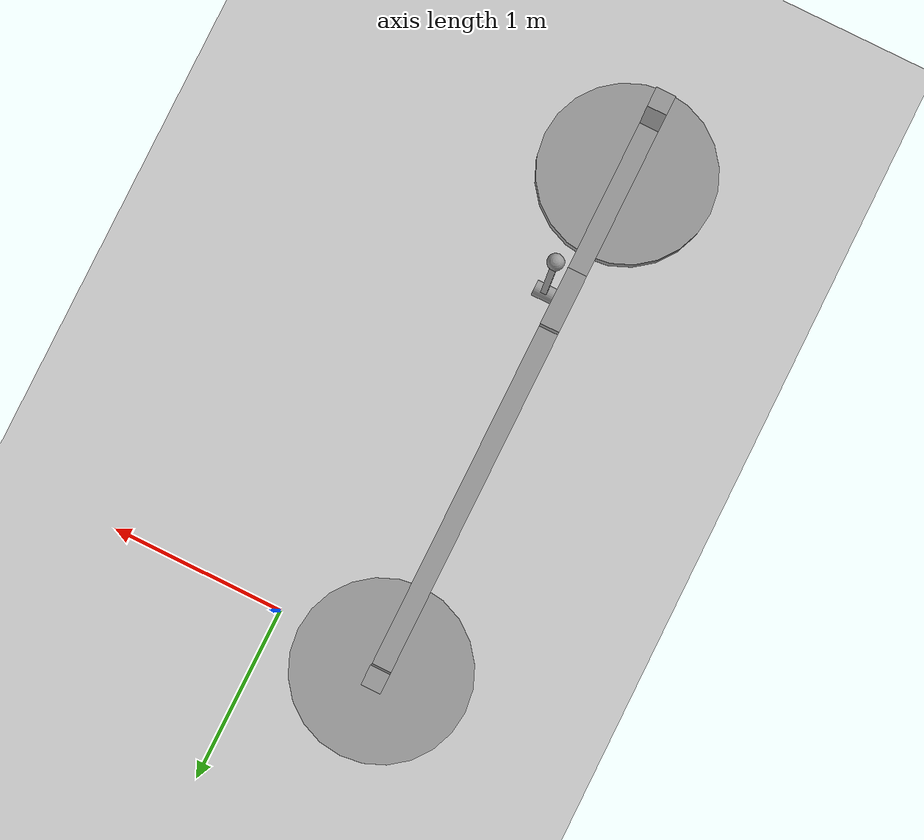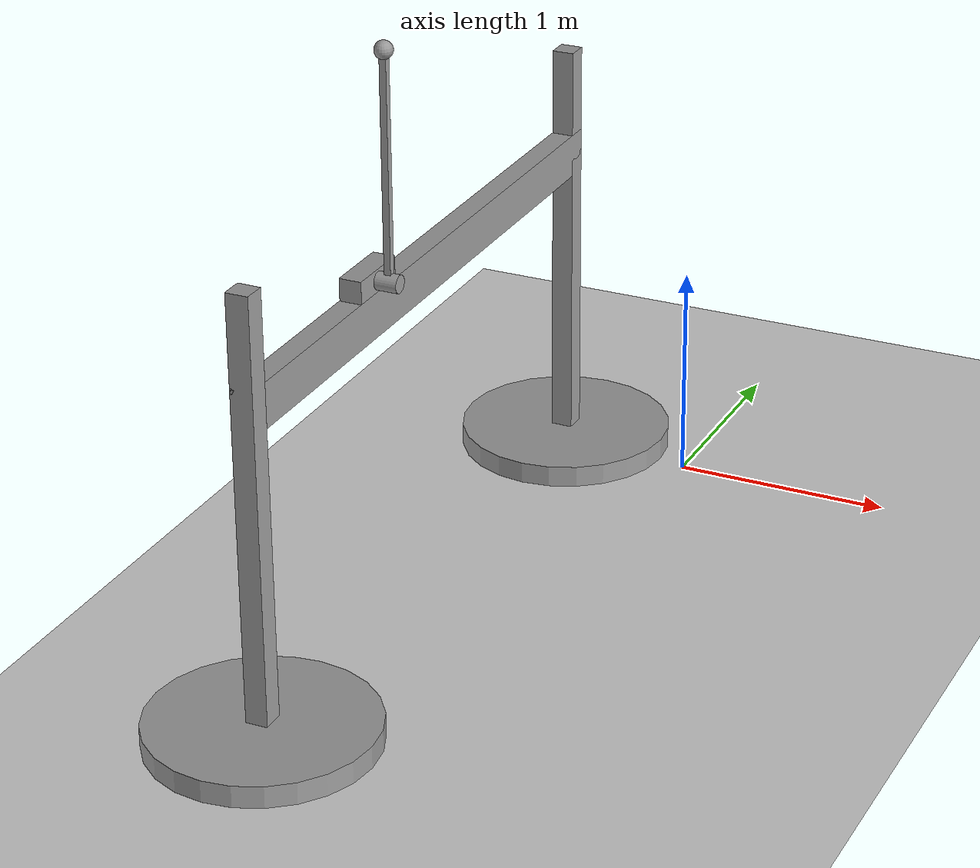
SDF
<sdf version="1.7">
 <world name="default">
  <light name="sun" type="directional">
   <pose>0 0 10 0 -0 0</pose>
   <diffuse>0.8 0.8 0.8 1</diffuse>
   <specular>0.2 0.2 0.2 1</specular>
   <attenuation>
    <range>1000</range>
    <constant>0.9</constant>
    <linear>0.01</linear>
    <quadratic>0.001</quadratic>
   </attenuation>
   <direction>-0.5 0.1 -0.9</direction>
   <spot><inner_angle>0</inner_angle><outer_angle>0</outer_angle><falloff>0</falloff></spot>
  </light>
  <model name="ground_plane">
   <static>1</static>
   <link name="link">
    <collision name="collision">
     <geometry><plane><normal>0 0 1</normal><size>100 100</size></plane></geometry>
     <surface><friction><ode><mu>100</mu><mu2>50</mu2></ode></friction></surface>
    </collision>
    <visual name="visual">
     <cast_shadows>0</cast_shadows>
     <geometry><plane><normal>0 0 1</normal><size>100 100</size></plane></geometry>
     <material>
      <script><uri>file://media/materials/scripts/gazebo.material</uri><name>Gazebo/Grey</name></script>
     </material>
    </visual>
   </link>
  </model>
  <gravity>0 0 -9.8</gravity>
  <magnetic_field>6e-06 2.3e-05 -4.2e-05</magnetic_field>
  <atmosphere type="adiabatic"/>
  <physics type="ode">
   <max_step_size>0.001</max_step_size>
   <real_time_factor>1</real_time_factor>
   <real_time_update_rate>1000</real_time_update_rate>
  </physics>
  <scene><ambient>0.4 0.4 0.4 1</ambient><background>0.7 0.7 0.7 1</background><shadows>1</shadows></scene>
  <spherical_coordinates>
   <surface_model>EARTH_WGS84</surface_model>
   <latitude_deg>0</latitude_deg>
   <longitude_deg>0</longitude_deg>
   <elevation>0</elevation>
   <heading_deg>0</heading_deg>
  </spherical_coordinates>
  <model name="pendulum">
   <link name="table_leg_left">
    <inertial>
     <mass>1</mass>
     <inertia>
      <ixx>0.166667</ixx>
      <ixy>0</ixy>
      <ixz>0</ixz>
      <iyy>0.166667</iyy>
      <iyz>0</iyz>
      <izz>0.166667</izz>
     </inertia>
    </inertial>
    <pose>0 0 1 0 -0 0</pose>
    <visual name="visual">
     <geometry><box><size>0.1 0.1 2</size></box></geometry>
     <material>
      <lighting>1</lighting>
      <script><uri>file://media/materials/scripts/gazebo.material</uri><name>Gazebo/Grey</name></script>
      <shader type="pixel"/>
      <emissive>0 0 0 1</emissive>
     </material>
    </visual>
    <collision name="collision">
     <geometry><box><size>0.1 0.1 2</size></box></geometry>
     <surface>
      <friction>
       <ode><mu>1</mu><mu2>1</mu2><fdir1>0 0 0</fdir1><slip1>0</slip1><slip2>0</slip2></ode>
       <torsional>
        <coefficient>1</coefficient>
        <patch_radius>0</patch_radius>
        <surface_radius>0</surface_radius>
        <use_patch_radius>1</use_patch_radius>
        <ode><slip>0</slip></ode>
       </torsional>
      </friction>
      <bounce><restitution_coefficient>0</restitution_coefficient><threshold>1e+06</threshold></bounce>
      <contact>
       <collide_without_contact>0</collide_without_contact>
       <collide_without_contact_bitmask>1</collide_without_contact_bitmask>
       <collide_bitmask>1</collide_bitmask>
       <ode>
        <soft_cfm>0</soft_cfm>
        <soft_erp>0.2</soft_erp>
        <kp>1e+13</kp>
        <kd>1</kd>
        <max_vel>0.01</max_vel>
        <min_depth>0</min_depth>
       </ode>
       <bullet>
        <split_impulse>1</split_impulse>
        <split_impulse_penetration_threshold>-0.01</split_impulse_penetration_threshold>
        <soft_cfm>0</soft_cfm>
        <soft_erp>0.2</soft_erp>
        <kp>1e+13</kp>
        <kd>1</kd>
       </bullet>
      </contact>
     </surface>
    </collision>
   </link>
   <link name="joint_wagon_stick">
    <inertial>
     <mass>1</mass>
     <inertia><ixx>0.145833</ixx><ixy>0</ixy><ixz>0</ixz><iyy>0.145833</iyy><iyz>0</iyz><izz>0.125</izz></inertia>
    </inertial>
    <pose>0.1 1 1.65 3.14158 1.57079 3.14158</pose>
    <visual name="visual">
     <geometry><cylinder><radius>0.04</radius><length>0.1</length></cylinder></geometry>
     <material>
      <lighting>1</lighting>
      <script><uri>file://media/materials/scripts/gazebo.material</uri><name>Gazebo/Grey</name></script>
      <shader type="pixel"><normal_map>__default__</normal_map></shader>
      <ambient>0.3 0.3 0.3 1</ambient>
      <diffuse>0.7 0.7 0.7 1</diffuse>
      <specular>0.01 0.01 0.01 1</specular>
      <emissive>0 0 0 1</emissive>
     </material>
    </visual>
    <collision name="collision">
     <geometry><cylinder><radius>0.04</radius><length>0.1</length></cylinder></geometry>
     <surface>
      <friction>
       <ode><mu>1</mu><mu2>1</mu2><fdir1>0 0 0</fdir1><slip1>0</slip1><slip2>0</slip2></ode>
       <torsional>
        <coefficient>1</coefficient>
        <patch_radius>0</patch_radius>
        <surface_radius>0</surface_radius>
        <use_patch_radius>1</use_patch_radius>
        <ode><slip>0</slip></ode>
       </torsional>
      </friction>
      <bounce><restitution_coefficient>0</restitution_coefficient><threshold>1e+06</threshold></bounce>
      <contact>
       <collide_without_contact>0</collide_without_contact>
       <collide_without_contact_bitmask>1</collide_without_contact_bitmask>
       <collide_bitmask>1</collide_bitmask>
       <ode>
        <soft_cfm>0</soft_cfm>
        <soft_erp>0.2</soft_erp>
        <kp>1e+13</kp>
        <kd>1</kd>
        <max_vel>0.01</max_vel>
        <min_depth>0</min_depth>
       </ode>
       <bullet>
        <split_impulse>1</split_impulse>
        <split_impulse_penetration_threshold>-0.01</split_impulse_penetration_threshold>
        <soft_cfm>0</soft_cfm>
        <soft_erp>0.2</soft_erp>
        <kp>1e+13</kp>
        <kd>1</kd>
       </bullet>
      </contact>
     </surface>
    </collision>
   </link>
   <link name="stick">
    <inertial>
     <mass>0.01</mass>
     <inertia>
      <ixx>0.166667</ixx>
      <ixy>0</ixy>
      <ixz>0</ixz>
      <iyy>0.166667</iyy>
      <iyz>0</iyz>
      <izz>0.166667</izz>
     </inertia>
    </inertial>
    <pose>0.1 1 2.15 0 -0 0</pose>
    <visual name="visual">
     <geometry><box><size>0.03 0.03 1</size></box></geometry>
     <material>
      <lighting>1</lighting>
      <script><uri>file://media/materials/scripts/gazebo.material</uri><name>Gazebo/Grey</name></script>
      <shader type="pixel"><normal_map>__default__</normal_map></shader>
      <ambient>0.3 0.3 0.3 1</ambient>
      <diffuse>0.7 0.7 0.7 1</diffuse>
      <specular>0.01 0.01 0.01 1</specular>
      <emissive>0 0 0 1</emissive>
     </material>
    </visual>
    <collision name="collision">
     <geometry><box><size>0.03 0.03 1</size></box></geometry>
     <surface>
      <friction>
       <ode><mu>1</mu><mu2>1</mu2><fdir1>0 0 0</fdir1><slip1>0</slip1><slip2>0</slip2></ode>
       <torsional>
        <coefficient>1</coefficient>
        <patch_radius>0</patch_radius>
        <surface_radius>0</surface_radius>
        <use_patch_radius>1</use_patch_radius>
        <ode><slip>0</slip></ode>
       </torsional>
      </friction>
      <bounce><restitution_coefficient>0</restitution_coefficient><threshold>1e+06</threshold></bounce>
      <contact>
       <collide_without_contact>0</collide_without_contact>
       <collide_without_contact_bitmask>1</collide_without_contact_bitmask>
       <collide_bitmask>1</collide_bitmask>
       <ode>
        <soft_cfm>0</soft_cfm>
        <soft_erp>0.2</soft_erp>
        <kp>1e+13</kp>
        <kd>1</kd>
        <max_vel>0.01</max_vel>
        <min_depth>0</min_depth>
       </ode>
       <bullet>
        <split_impulse>1</split_impulse>
        <split_impulse_penetration_threshold>-0.01</split_impulse_penetration_threshold>
        <soft_cfm>0</soft_cfm>
        <soft_erp>0.2</soft_erp>
        <kp>1e+13</kp>
        <kd>1</kd>
       </bullet>
      </contact>
     </surface>
    </collision>
   </link>
   <link name="pendulum_head">
    <inertial>
     <mass>1</mass>
     <inertia><ixx>0.1</ixx><ixy>0</ixy><ixz>0</ixz><iyy>0.1</iyy><iyz>0</iyz><izz>0.1</izz></inertia>
    </inertial>
    <pose>0.1 1 2.65 0 -0 0</pose>
    <visual name="visual">
     <geometry><sphere><radius>0.04</radius></sphere></geometry>
     <material>
      <lighting>1</lighting>
      <script><uri>file://media/materials/scripts/gazebo.material</uri><name>Gazebo/Grey</name></script>
      <shader type="pixel"><normal_map>__default__</normal_map></shader>
      <ambient>0.3 0.3 0.3 1</ambient>
      <diffuse>0.7 0.7 0.7 1</diffuse>
      <specular>0.01 0.01 0.01 1</specular>
      <emissive>0 0 0 1</emissive>
     </material>
    </visual>
    <collision name="collision">
     <geometry><sphere><radius>0.04</radius></sphere></geometry>
     <surface>
      <friction>
       <ode><mu>1</mu><mu2>1</mu2><fdir1>0 0 0</fdir1><slip1>0</slip1><slip2>0</slip2></ode>
       <torsional>
        <coefficient>1</coefficient>
        <patch_radius>0</patch_radius>
        <surface_radius>0</surface_radius>
        <use_patch_radius>1</use_patch_radius>
        <ode><slip>0</slip></ode>
       </torsional>
      </friction>
      <bounce><restitution_coefficient>0</restitution_coefficient><threshold>1e+06</threshold></bounce>
      <contact>
       <collide_without_contact>0</collide_without_contact>
       <collide_without_contact_bitmask>1</collide_without_contact_bitmask>
       <collide_bitmask>1</collide_bitmask>
       <ode>
        <soft_cfm>0</soft_cfm>
        <soft_erp>0.2</soft_erp>
        <kp>1e+13</kp>
        <kd>1</kd>
        <max_vel>0.01</max_vel>
        <min_depth>0</min_depth>
       </ode>
       <bullet>
        <split_impulse>1</split_impulse>
        <split_impulse_penetration_threshold>-0.01</split_impulse_penetration_threshold>
        <soft_cfm>0</soft_cfm>
        <soft_erp>0.2</soft_erp>
        <kp>1e+13</kp>
        <kd>1</kd>
       </bullet>
      </contact>
     </surface>
    </collision>
   </link>
   <link name="pendulum_wagon">
    <inertial>
     <mass>1</mass>
     <inertia>
      <ixx>0.166667</ixx>
      <ixy>0</ixy>
      <ixz>0</ixz>
      <iyy>0.166667</iyy>
      <iyz>0</iyz>
      <izz>0.166667</izz>
     </inertia>
    </inertial>
    <pose>0 1 1.65 0 -0 0</pose>
    <self_collide>1</self_collide>
    <visual name="visual">
     <geometry><box><size>0.1 0.3 0.1</size></box></geometry>
     <material>
      <lighting>1</lighting>
      <script><uri>file://media/materials/scripts/gazebo.material</uri><name>Gazebo/Grey</name></script>
      <shader type="pixel"/>
      <emissive>0 0 0 1</emissive>
     </material>
    </visual>
    <collision name="collision">
     <geometry><box><size>0.1 0.3 0.1</size></box></geometry>
     <surface>
      <friction>
       <ode><mu>0</mu><mu2>0</mu2><fdir1>0 0 0</fdir1><slip1>0</slip1><slip2>0</slip2></ode>
       <torsional>
        <coefficient>1</coefficient>
        <patch_radius>0</patch_radius>
        <surface_radius>0</surface_radius>
        <use_patch_radius>1</use_patch_radius>
        <ode><slip>0</slip></ode>
       </torsional>
      </friction>
      <bounce><restitution_coefficient>0</restitution_coefficient><threshold>1e+06</threshold></bounce>
      <contact>
       <collide_without_contact>0</collide_without_contact>
       <collide_without_contact_bitmask>1</collide_without_contact_bitmask>
       <collide_bitmask>1</collide_bitmask>
       <ode>
        <soft_cfm>0</soft_cfm>
        <soft_erp>0.2</soft_erp>
        <kp>1e+13</kp>
        <kd>1</kd>
        <max_vel>0.01</max_vel>
        <min_depth>0</min_depth>
       </ode>
       <bullet>
        <split_impulse>1</split_impulse>
        <split_impulse_penetration_threshold>-0.01</split_impulse_penetration_threshold>
        <soft_cfm>0</soft_cfm>
        <soft_erp>0.2</soft_erp>
        <kp>1e+13</kp>
        <kd>1</kd>
       </bullet>
      </contact>
     </surface>
    </collision>
   </link>
   <link name="table_leg_foot_left">
    <inertial>
     <mass>0.107152</mass>
     <inertia>
      <ixx>0.00679952</ixx>
      <ixy>0</ixy>
      <ixz>0</ixz>
      <iyy>0.00679952</iyy>
      <iyz>0</iyz>
      <izz>0.013394</izz>
     </inertia>
    </inertial>
    <pose>0 0 0.05 0 -0 0</pose>
    <visual name="visual">
     <geometry><cylinder><radius>0.5</radius><length>0.0999997</length></cylinder></geometry>
     <material>
      <lighting>1</lighting>
      <script><uri>file://media/materials/scripts/gazebo.material</uri><name>Gazebo/Grey</name></script>
      <shader type="pixel"><normal_map>__default__</normal_map></shader>
      <ambient>0.3 0.3 0.3 1</ambient>
      <diffuse>0.7 0.7 0.7 1</diffuse>
      <specular>0.01 0.01 0.01 1</specular>
      <emissive>0 0 0 1</emissive>
     </material>
    </visual>
    <collision name="collision">
     <geometry><cylinder><radius>0.5</radius><length>0.1</length></cylinder></geometry>
     <surface>
      <friction>
       <ode><mu>1</mu><mu2>1</mu2><fdir1>0 0 0</fdir1><slip1>0</slip1><slip2>0</slip2></ode>
       <torsional>
        <coefficient>1</coefficient>
        <patch_radius>0</patch_radius>
        <surface_radius>0</surface_radius>
        <use_patch_radius>1</use_patch_radius>
        <ode><slip>0</slip></ode>
       </torsional>
      </friction>
      <bounce><restitution_coefficient>0</restitution_coefficient><threshold>1e+06</threshold></bounce>
      <contact>
       <collide_without_contact>0</collide_without_contact>
       <collide_without_contact_bitmask>1</collide_without_contact_bitmask>
       <collide_bitmask>1</collide_bitmask>
       <ode>
        <soft_cfm>0</soft_cfm>
        <soft_erp>0.2</soft_erp>
        <kp>1e+13</kp>
        <kd>1</kd>
        <max_vel>0.01</max_vel>
        <min_depth>0</min_depth>
       </ode>
       <bullet>
        <split_impulse>1</split_impulse>
        <split_impulse_penetration_threshold>-0.01</split_impulse_penetration_threshold>
        <soft_cfm>0</soft_cfm>
        <soft_erp>0.2</soft_erp>
        <kp>1e+13</kp>
        <kd>1</kd>
       </bullet>
      </contact>
     </surface>
    </collision>
   </link>
   <link name="table_leg_foot_left_clone">
    <inertial>
     <mass>0.107152</mass>
     <inertia>
      <ixx>0.00679952</ixx>
      <ixy>0</ixy>
      <ixz>0</ixz>
      <iyy>0.00679952</iyy>
      <iyz>0</iyz>
      <izz>0.013394</izz>
     </inertia>
    </inertial>
    <pose>0 3 0.05 0 -0 0</pose>
    <visual name="visual">
     <geometry><cylinder><radius>0.5</radius><length>0.0999997</length></cylinder></geometry>
     <material>
      <lighting>1</lighting>
      <script><uri>file://media/materials/scripts/gazebo.material</uri><name>Gazebo/Grey</name></script>
      <shader type="pixel"><normal_map>__default__</normal_map></shader>
      <ambient>0.3 0.3 0.3 1</ambient>
      <diffuse>0.7 0.7 0.7 1</diffuse>
      <specular>0.01 0.01 0.01 1</specular>
      <emissive>0 0 0 1</emissive>
     </material>
    </visual>
    <collision name="collision">
     <geometry><cylinder><radius>0.5</radius><length>0.1</length></cylinder></geometry>
     <surface>
      <friction>
       <ode><mu>1</mu><mu2>1</mu2><fdir1>0 0 0</fdir1><slip1>0</slip1><slip2>0</slip2></ode>
       <torsional>
        <coefficient>1</coefficient>
        <patch_radius>0</patch_radius>
        <surface_radius>0</surface_radius>
        <use_patch_radius>1</use_patch_radius>
        <ode><slip>0</slip></ode>
       </torsional>
      </friction>
      <bounce><restitution_coefficient>0</restitution_coefficient><threshold>1e+06</threshold></bounce>
      <contact>
       <collide_without_contact>0</collide_without_contact>
       <collide_without_contact_bitmask>1</collide_without_contact_bitmask>
       <collide_bitmask>1</collide_bitmask>
       <ode>
        <soft_cfm>0</soft_cfm>
        <soft_erp>0.2</soft_erp>
        <kp>1e+13</kp>
        <kd>1</kd>
        <max_vel>0.01</max_vel>
        <min_depth>0</min_depth>
       </ode>
       <bullet>
        <split_impulse>1</split_impulse>
        <split_impulse_penetration_threshold>-0.01</split_impulse_penetration_threshold>
        <soft_cfm>0</soft_cfm>
        <soft_erp>0.2</soft_erp>
        <kp>1e+13</kp>
        <kd>1</kd>
       </bullet>
      </contact>
     </surface>
    </collision>
   </link>
   <link name="table_leg_right">
    <inertial>
     <mass>1</mass>
     <inertia>
      <ixx>0.166667</ixx>
      <ixy>0</ixy>
      <ixz>0</ixz>
      <iyy>0.166667</iyy>
      <iyz>0</iyz>
      <izz>0.166667</izz>
     </inertia>
    </inertial>
    <pose>0 3 1 0 -0 0</pose>
    <self_collide>1</self_collide>
    <visual name="visual">
     <geometry><box><size>0.1 0.1 2</size></box></geometry>
     <material>
      <lighting>1</lighting>
      <script><uri>file://media/materials/scripts/gazebo.material</uri><name>Gazebo/Grey</name></script>
      <shader type="pixel"/>
      <emissive>0 0 0 1</emissive>
     </material>
    </visual>
    <collision name="collision">
     <geometry><box><size>0.1 0.1 2</size></box></geometry>
     <surface>
      <friction>
       <ode><mu>1</mu><mu2>1</mu2><fdir1>0 0 0</fdir1><slip1>0</slip1><slip2>0</slip2></ode>
       <torsional>
        <coefficient>1</coefficient>
        <patch_radius>0</patch_radius>
        <surface_radius>0</surface_radius>
        <use_patch_radius>1</use_patch_radius>
        <ode><slip>0</slip></ode>
       </torsional>
      </friction>
      <bounce><restitution_coefficient>0</restitution_coefficient><threshold>1e+06</threshold></bounce>
      <contact>
       <collide_without_contact>0</collide_without_contact>
       <collide_without_contact_bitmask>1</collide_without_contact_bitmask>
       <collide_bitmask>1</collide_bitmask>
       <ode>
        <soft_cfm>0</soft_cfm>
        <soft_erp>0.2</soft_erp>
        <kp>1e+13</kp>
        <kd>1</kd>
        <max_vel>0.01</max_vel>
        <min_depth>0</min_depth>
       </ode>
       <bullet>
        <split_impulse>1</split_impulse>
        <split_impulse_penetration_threshold>-0.01</split_impulse_penetration_threshold>
        <soft_cfm>0</soft_cfm>
        <soft_erp>0.2</soft_erp>
        <kp>1e+13</kp>
        <kd>1</kd>
       </bullet>
      </contact>
     </surface>
    </collision>
   </link>
   <link name="table_plate">
    <inertial>
     <mass>1</mass>
     <inertia>
      <ixx>0.166667</ixx>
      <ixy>0</ixy>
      <ixz>0</ixz>
      <iyy>0.166667</iyy>
      <iyz>0</iyz>
      <izz>0.166667</izz>
     </inertia>
    </inertial>
    <pose>0 1.5 1.5 0 -0 0</pose>
    <self_collide>1</self_collide>
    <visual name="visual">
     <geometry><box><size>0.1 3.1 0.2</size></box></geometry>
     <material>
      <lighting>1</lighting>
      <script><uri>file://media/materials/scripts/gazebo.material</uri><name>Gazebo/Grey</name></script>
      <shader type="pixel"/>
      <emissive>0 0 0 1</emissive>
     </material>
    </visual>
    <collision name="collision">
     <geometry><box><size>0.1 3.1 0.2</size></box></geometry>
     <surface>
      <friction>
       <ode><mu>0</mu><mu2>0</mu2><fdir1>0 0 0</fdir1><slip1>0</slip1><slip2>0</slip2></ode>
       <torsional>
        <coefficient>1</coefficient>
        <patch_radius>0</patch_radius>
        <surface_radius>0</surface_radius>
        <use_patch_radius>1</use_patch_radius>
        <ode><slip>0</slip></ode>
       </torsional>
      </friction>
      <bounce><restitution_coefficient>0</restitution_coefficient><threshold>1e+06</threshold></bounce>
      <contact>
       <collide_without_contact>0</collide_without_contact>
       <collide_without_contact_bitmask>1</collide_without_contact_bitmask>
       <collide_bitmask>1</collide_bitmask>
       <ode>
        <soft_cfm>0</soft_cfm>
        <soft_erp>0.2</soft_erp>
        <kp>1e+13</kp>
        <kd>1</kd>
        <max_vel>0.01</max_vel>
        <min_depth>0</min_depth>
       </ode>
       <bullet>
        <split_impulse>1</split_impulse>
        <split_impulse_penetration_threshold>-0.01</split_impulse_penetration_threshold>
        <soft_cfm>0</soft_cfm>
        <soft_erp>0.2</soft_erp>
        <kp>1e+13</kp>
        <kd>1</kd>
       </bullet>
      </contact>
     </surface>
    </collision>
   </link>
   <joint name="joint_wagon_to_stick" type="fixed">
    <parent>joint_wagon_stick</parent>
    <child>stick</child>
    <physics>
     <ode><limit><cfm>0</cfm><erp>0.2</erp></limit><suspension><cfm>0</cfm><erp>0.2</erp></suspension></ode>
    </physics>
   </joint>
   <joint name="stick_to_head" type="fixed">
    <parent>stick</parent>
    <child>pendulum_head</child>
    <physics>
     <ode><limit><cfm>0</cfm><erp>0.2</erp></limit><suspension><cfm>0</cfm><erp>0.2</erp></suspension></ode>
    </physics>
   </joint>
   <joint name="table_leg_left_to_foot_joint" type="fixed">
    <parent>table_leg_left</parent>
    <child>table_leg_foot_left</child>
    <physics>
     <ode><limit><cfm>0</cfm><erp>0.2</erp></limit><suspension><cfm>0</cfm><erp>0.2</erp></suspension></ode>
    </physics>
   </joint>
   <joint name="table_leg_right_to_foot_joint" type="revolute">
    <parent>table_leg_right</parent>
    <child>table_leg_foot_left_clone</child>
    <axis>
     <xyz>1 0 0</xyz>
     <limit>
      <lower>-1.79769e+308</lower>
      <upper>1.79769e+308</upper>
      <effort>-1</effort>
      <velocity>-1</velocity>
     </limit>
     <dynamics>
      <spring_reference>0</spring_reference>
      <spring_stiffness>0</spring_stiffness>
      <damping>0</damping>
      <friction>0</friction>
     </dynamics>
    </axis>
    <physics>
     <ode><limit><cfm>0</cfm><erp>0.2</erp></limit><suspension><cfm>0</cfm><erp>0.2</erp></suspension></ode>
    </physics>
   </joint>
   <joint name="table_plate_to_left_table_leg" type="fixed">
    <parent>table_plate</parent>
    <child>table_leg_left</child>
    <physics>
     <ode><limit><cfm>0</cfm><erp>0.2</erp></limit><suspension><cfm>0</cfm><erp>0.2</erp></suspension></ode>
    </physics>
   </joint>
   <joint name="table_plate_to_right_table_leg" type="fixed">
    <parent>table_plate</parent>
    <child>table_leg_right</child>
    <physics>
     <ode><limit><cfm>0</cfm><erp>0.2</erp></limit><suspension><cfm>0</cfm><erp>0.2</erp></suspension></ode>
    </physics>
   </joint>
   <joint name="table_plate_to_wagon" type="prismatic">
    <parent>table_plate</parent>
    <child>pendulum_wagon</child>
    <axis>
     <xyz>0 1 0</xyz>
     <limit><lower>-5</lower><upper>5</upper><effort>-1</effort><velocity>-1</velocity></limit>
     <dynamics>
      <spring_reference>0</spring_reference>
      <spring_stiffness>0</spring_stiffness>
      <damping>0</damping>
      <friction>0</friction>
     </dynamics>
    </axis>
    <physics>
     <ode><limit><cfm>0</cfm><erp>0.2</erp></limit><suspension><cfm>0</cfm><erp>0.2</erp></suspension></ode>
    </physics>
   </joint>
   <joint name="wagon_to_joint" type="revolute">
    <parent>pendulum_wagon</parent>
    <child>joint_wagon_stick</child>
    <axis>
     <xyz>0 0 1</xyz>
     <limit>
      <lower>-1.79769e+308</lower>
      <upper>1.79769e+308</upper>
      <effort>-1</effort>
      <velocity>-1</velocity>
     </limit>
     <dynamics>
      <spring_reference>0</spring_reference>
      <spring_stiffness>0</spring_stiffness>
      <damping>0</damping>
      <friction>0</friction>
     </dynamics>
    </axis>
    <physics>
     <ode><limit><cfm>0</cfm><erp>0.2</erp></limit><suspension><cfm>0</cfm><erp>0.2</erp></suspension></ode>
    </physics>
   </joint>
   <static>0</static>
   <plugin name="pendulum_interface" filename="libpendulum_interface.so"/>
   <pose>-0.631696 -2.95611 0 0 -0 0</pose>
  </model>
 </world>
</sdf>
